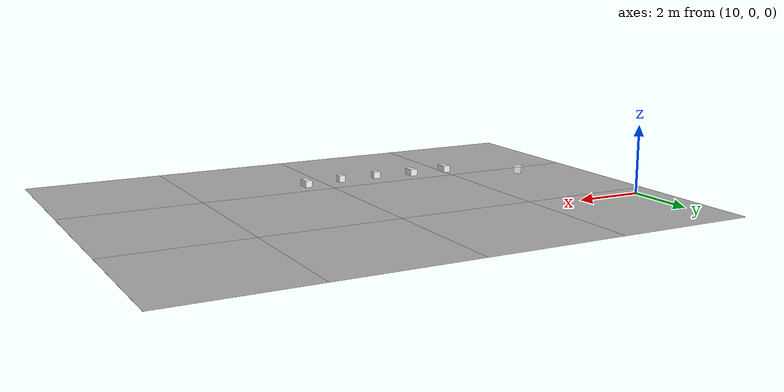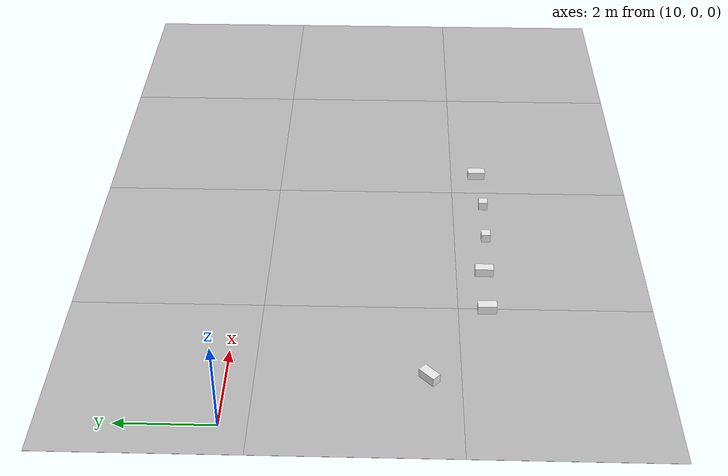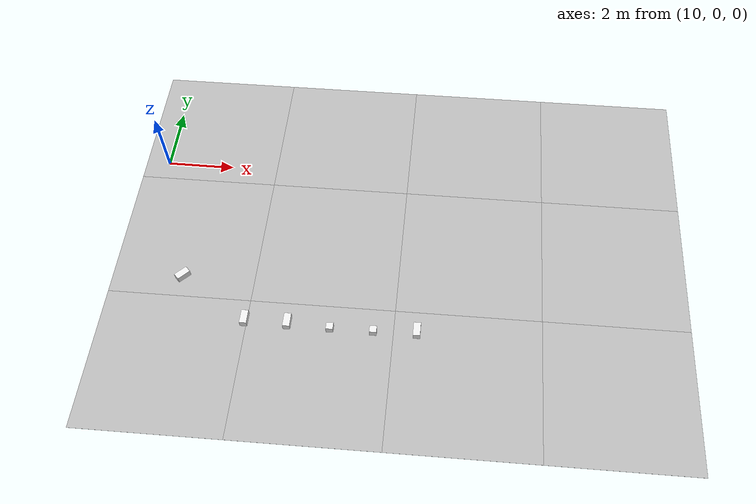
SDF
<sdf version="1.6">
 <world name="default">
  <model name="Tile/3-0">
   <static>1</static>
   <link name="link">
    <collision name="collision">
     <geometry><plane><normal>0 0 1</normal><size>4.096 4.096</size></plane></geometry>
     <surface><friction><ode><mu>100</mu><mu2>50</mu2></ode></friction></surface>
    </collision>
    <visual name="visual">
     <cast_shadows>0</cast_shadows>
     <geometry><plane><normal>0 0 1</normal><size>4.096 4.096</size></plane></geometry>
     <material>
      <script>
       <uri>file://materials/scripts</uri>
       <uri>file://materials/textures</uri>
       <name>Tile/bb6622205ec6fa9754d680b6af74b4b74165d6a4ec52a02b70ec7b28941813ba</name>
      </script>
     </material>
    </visual>
   </link>
   <pose>11.336 -6.705231160202137 0 0 -0 0</pose>
  </model>
  <model name="Tile/3-1">
   <static>1</static>
   <link name="link">
    <collision name="collision">
     <geometry><plane><normal>0 0 1</normal><size>4.096 4.096</size></plane></geometry>
     <surface><friction><ode><mu>100</mu><mu2>50</mu2></ode></friction></surface>
    </collision>
    <visual name="visual">
     <cast_shadows>0</cast_shadows>
     <geometry><plane><normal>0 0 1</normal><size>4.096 4.096</size></plane></geometry>
     <material>
      <script>
       <uri>file://materials/scripts</uri>
       <uri>file://materials/textures</uri>
       <name>Tile/f730026fd5666536d40734464e8b31680d31e4660e39eef831013a25a2517ce9</name>
      </script>
     </material>
    </visual>
   </link>
   <pose>11.336 -2.609231160202137 0 0 -0 0</pose>
  </model>
  <model name="Tile/3-2">
   <static>1</static>
   <link name="link">
    <collision name="collision">
     <geometry><plane><normal>0 0 1</normal><size>4.096 4.096</size></plane></geometry>
     <surface><friction><ode><mu>100</mu><mu2>50</mu2></ode></friction></surface>
    </collision>
    <visual name="visual">
     <cast_shadows>0</cast_shadows>
     <geometry><plane><normal>0 0 1</normal><size>4.096 4.096</size></plane></geometry>
     <material>
      <script>
       <uri>file://materials/scripts</uri>
       <uri>file://materials/textures</uri>
       <name>Tile/5eab350b8220ac9944dbdfa4ac3288c7c17e24c3bf5df0dfcf6173d64dae00a1</name>
      </script>
     </material>
    </visual>
   </link>
   <pose>11.336 1.486768839797863 0 0 -0 0</pose>
  </model>
  <model name="Tile/4-0">
   <static>1</static>
   <link name="link">
    <collision name="collision">
     <geometry><plane><normal>0 0 1</normal><size>4.096 4.096</size></plane></geometry>
     <surface><friction><ode><mu>100</mu><mu2>50</mu2></ode></friction></surface>
    </collision>
    <visual name="visual">
     <cast_shadows>0</cast_shadows>
     <geometry><plane><normal>0 0 1</normal><size>4.096 4.096</size></plane></geometry>
     <material>
      <script>
       <uri>file://materials/scripts</uri>
       <uri>file://materials/textures</uri>
       <name>Tile/edca1d296c7e31d2dfc0b247a1dcf915b1e78109557f9aef2d5b2542b9a4b68d</name>
      </script>
     </material>
    </visual>
   </link>
   <pose>15.431999999999999 -6.705231160202137 0 0 -0 0</pose>
  </model>
  <model name="Tile/4-1">
   <static>1</static>
   <link name="link">
    <collision name="collision">
     <geometry><plane><normal>0 0 1</normal><size>4.096 4.096</size></plane></geometry>
     <surface><friction><ode><mu>100</mu><mu2>50</mu2></ode></friction></surface>
    </collision>
    <visual name="visual">
     <cast_shadows>0</cast_shadows>
     <geometry><plane><normal>0 0 1</normal><size>4.096 4.096</size></plane></geometry>
     <material>
      <script>
       <uri>file://materials/scripts</uri>
       <uri>file://materials/textures</uri>
       <name>Tile/53bcbbffdd2a24df52fb2cbae84d48fe1a72c995905a34df0951e06d22a7bbb8</name>
      </script>
     </material>
    </visual>
   </link>
   <pose>15.431999999999999 -2.609231160202137 0 0 -0 0</pose>
  </model>
  <model name="Tile/4-2">
   <static>1</static>
   <link name="link">
    <collision name="collision">
     <geometry><plane><normal>0 0 1</normal><size>4.096 4.096</size></plane></geometry>
     <surface><friction><ode><mu>100</mu><mu2>50</mu2></ode></friction></surface>
    </collision>
    <visual name="visual">
     <cast_shadows>0</cast_shadows>
     <geometry><plane><normal>0 0 1</normal><size>4.096 4.096</size></plane></geometry>
     <material>
      <script>
       <uri>file://materials/scripts</uri>
       <uri>file://materials/textures</uri>
       <name>Tile/5eab350b8220ac9944dbdfa4ac3288c7c17e24c3bf5df0dfcf6173d64dae00a1</name>
      </script>
     </material>
    </visual>
   </link>
   <pose>15.431999999999999 1.486768839797863 0 0 -0 0</pose>
  </model>
  <model name="Tile/5-0">
   <static>1</static>
   <link name="link">
    <collision name="collision">
     <geometry><plane><normal>0 0 1</normal><size>4.096 4.096</size></plane></geometry>
     <surface><friction><ode><mu>100</mu><mu2>50</mu2></ode></friction></surface>
    </collision>
    <visual name="visual">
     <cast_shadows>0</cast_shadows>
     <geometry><plane><normal>0 0 1</normal><size>4.096 4.096</size></plane></geometry>
     <material>
      <script>
       <uri>file://materials/scripts</uri>
       <uri>file://materials/textures</uri>
       <name>Tile/c8229a72bc5ca8e4c2c8f83e9c625b3b44bb9c1ed4ab1373b71f34394571a84c</name>
      </script>
     </material>
    </visual>
   </link>
   <pose>19.528 -6.705231160202137 0 0 -0 0</pose>
  </model>
  <model name="Tile/5-1">
   <static>1</static>
   <link name="link">
    <collision name="collision">
     <geometry><plane><normal>0 0 1</normal><size>4.096 4.096</size></plane></geometry>
     <surface><friction><ode><mu>100</mu><mu2>50</mu2></ode></friction></surface>
    </collision>
    <visual name="visual">
     <cast_shadows>0</cast_shadows>
     <geometry><plane><normal>0 0 1</normal><size>4.096 4.096</size></plane></geometry>
     <material>
      <script>
       <uri>file://materials/scripts</uri>
       <uri>file://materials/textures</uri>
       <name>Tile/c3cf81229562460738026fa7ca245ea24e11b9d7d5af4e07face37e2f7680a30</name>
      </script>
     </material>
    </visual>
   </link>
   <pose>19.528 -2.609231160202137 0 0 -0 0</pose>
  </model>
  <model name="Tile/5-2">
   <static>1</static>
   <link name="link">
    <collision name="collision">
     <geometry><plane><normal>0 0 1</normal><size>4.096 4.096</size></plane></geometry>
     <surface><friction><ode><mu>100</mu><mu2>50</mu2></ode></friction></surface>
    </collision>
    <visual name="visual">
     <cast_shadows>0</cast_shadows>
     <geometry><plane><normal>0 0 1</normal><size>4.096 4.096</size></plane></geometry>
     <material>
      <script>
       <uri>file://materials/scripts</uri>
       <uri>file://materials/textures</uri>
       <name>Tile/5eab350b8220ac9944dbdfa4ac3288c7c17e24c3bf5df0dfcf6173d64dae00a1</name>
      </script>
     </material>
    </visual>
   </link>
   <pose>19.528 1.486768839797863 0 0 -0 0</pose>
  </model>
  <model name="Tile/6-0">
   <static>1</static>
   <link name="link">
    <collision name="collision">
     <geometry><plane><normal>0 0 1</normal><size>4.096 4.096</size></plane></geometry>
     <surface><friction><ode><mu>100</mu><mu2>50</mu2></ode></friction></surface>
    </collision>
    <visual name="visual">
     <cast_shadows>0</cast_shadows>
     <geometry><plane><normal>0 0 1</normal><size>4.096 4.096</size></plane></geometry>
     <material>
      <script>
       <uri>file://materials/scripts</uri>
       <uri>file://materials/textures</uri>
       <name>Tile/5eab350b8220ac9944dbdfa4ac3288c7c17e24c3bf5df0dfcf6173d64dae00a1</name>
      </script>
     </material>
    </visual>
   </link>
   <pose>23.624 -6.705231160202137 0 0 -0 0</pose>
  </model>
  <model name="Tile/6-1">
   <static>1</static>
   <link name="link">
    <collision name="collision">
     <geometry><plane><normal>0 0 1</normal><size>4.096 4.096</size></plane></geometry>
     <surface><friction><ode><mu>100</mu><mu2>50</mu2></ode></friction></surface>
    </collision>
    <visual name="visual">
     <cast_shadows>0</cast_shadows>
     <geometry><plane><normal>0 0 1</normal><size>4.096 4.096</size></plane></geometry>
     <material>
      <script>
       <uri>file://materials/scripts</uri>
       <uri>file://materials/textures</uri>
       <name>Tile/5eab350b8220ac9944dbdfa4ac3288c7c17e24c3bf5df0dfcf6173d64dae00a1</name>
      </script>
     </material>
    </visual>
   </link>
   <pose>23.624 -2.609231160202137 0 0 -0 0</pose>
  </model>
  <model name="Tile/6-2">
   <static>1</static>
   <link name="link">
    <collision name="collision">
     <geometry><plane><normal>0 0 1</normal><size>4.096 4.096</size></plane></geometry>
     <surface><friction><ode><mu>100</mu><mu2>50</mu2></ode></friction></surface>
    </collision>
    <visual name="visual">
     <cast_shadows>0</cast_shadows>
     <geometry><plane><normal>0 0 1</normal><size>4.096 4.096</size></plane></geometry>
     <material>
      <script>
       <uri>file://materials/scripts</uri>
       <uri>file://materials/textures</uri>
       <name>Tile/5eab350b8220ac9944dbdfa4ac3288c7c17e24c3bf5df0dfcf6173d64dae00a1</name>
      </script>
     </material>
    </visual>
   </link>
   <pose>23.624 1.486768839797863 0 0 -0 0</pose>
  </model>
  <model name="Obstacle/-52/0">
   <pose>11.313351365237942 -4.016295090390226 0.1 0 0 -0.7853981633974483</pose>
   <link name="link">
    <inertial>
     <mass>10</mass>
     <inertia>
      <ixx>0.166667</ixx>
      <ixy>0</ixy>
      <ixz>0</ixz>
      <iyy>0.166667</iyy>
      <iyz>0</iyz>
      <izz>0.166667</izz>
     </inertia>
    </inertial>
    <collision name="collision"><geometry><box><size>0.2 0.4 0.2</size></box></geometry></collision>
    <visual name="visual">
     <geometry><box><size>0.2 0.4 0.2</size></box></geometry>
     <material>
      <script><name>Gazebo/White</name><uri>file://media/materials/scripts/gazebo.material</uri></script>
     </material>
    </visual>
   </link>
  </model>
  <model name="Obstacle/-59/0">
   <pose>13.32253967444162 -5.262741699796952 0.1 0 0 -0.0</pose>
   <link name="link">
    <inertial>
     <mass>10</mass>
     <inertia>
      <ixx>0.166667</ixx>
      <ixy>0</ixy>
      <ixz>0</ixz>
      <iyy>0.166667</iyy>
      <iyz>0</iyz>
      <izz>0.166667</izz>
     </inertia>
    </inertial>
    <collision name="collision"><geometry><box><size>0.2 0.4 0.2</size></box></geometry></collision>
    <visual name="visual">
     <geometry><box><size>0.2 0.4 0.2</size></box></geometry>
     <material>
      <script><name>Gazebo/White</name><uri>file://media/materials/scripts/gazebo.material</uri></script>
     </material>
    </visual>
   </link>
  </model>
  <model name="Obstacle/-64/0">
   <pose>14.522539674441619 -5.262741699796952 0.1 0 0 -0.0</pose>
   <link name="link">
    <inertial>
     <mass>10</mass>
     <inertia>
      <ixx>0.166667</ixx>
      <ixy>0</ixy>
      <ixz>0</ixz>
      <iyy>0.166667</iyy>
      <iyz>0</iyz>
      <izz>0.166667</izz>
     </inertia>
    </inertial>
    <collision name="collision"><geometry><box><size>0.2 0.4 0.2</size></box></geometry></collision>
    <visual name="visual">
     <geometry><box><size>0.2 0.4 0.2</size></box></geometry>
     <material>
      <script><name>Gazebo/White</name><uri>file://media/materials/scripts/gazebo.material</uri></script>
     </material>
    </visual>
   </link>
  </model>
  <model name="Obstacle/-69/0">
   <pose>15.722539674441618 -5.362741699796952 0.1 0 0 -0.0</pose>
   <link name="link">
    <inertial>
     <mass>10</mass>
     <inertia>
      <ixx>0.166667</ixx>
      <ixy>0</ixy>
      <ixz>0</ixz>
      <iyy>0.166667</iyy>
      <iyz>0</iyz>
      <izz>0.166667</izz>
     </inertia>
    </inertial>
    <collision name="collision"><geometry><box><size>0.2 0.2 0.2</size></box></geometry></collision>
    <visual name="visual">
     <geometry><box><size>0.2 0.2 0.2</size></box></geometry>
     <material>
      <script><name>Gazebo/White</name><uri>file://media/materials/scripts/gazebo.material</uri></script>
     </material>
    </visual>
   </link>
  </model>
  <model name="Obstacle/-74/0">
   <pose>16.92253967444162 -5.362741699796952 0.1 0 0 -0.0</pose>
   <link name="link">
    <inertial>
     <mass>10</mass>
     <inertia>
      <ixx>0.166667</ixx>
      <ixy>0</ixy>
      <ixz>0</ixz>
      <iyy>0.166667</iyy>
      <iyz>0</iyz>
      <izz>0.166667</izz>
     </inertia>
    </inertial>
    <collision name="collision"><geometry><box><size>0.2 0.2 0.2</size></box></geometry></collision>
    <visual name="visual">
     <geometry><box><size>0.2 0.2 0.2</size></box></geometry>
     <material>
      <script><name>Gazebo/White</name><uri>file://media/materials/scripts/gazebo.material</uri></script>
     </material>
    </visual>
   </link>
  </model>
  <model name="Obstacle/-79/0">
   <pose>18.12253967444162 -5.262741699796952 0.1 0 0 -0.0</pose>
   <link name="link">
    <inertial>
     <mass>10</mass>
     <inertia>
      <ixx>0.166667</ixx>
      <ixy>0</ixy>
      <ixz>0</ixz>
      <iyy>0.166667</iyy>
      <iyz>0</iyz>
      <izz>0.166667</izz>
     </inertia>
    </inertial>
    <collision name="collision"><geometry><box><size>0.2 0.4 0.2</size></box></geometry></collision>
    <visual name="visual">
     <geometry><box><size>0.2 0.4 0.2</size></box></geometry>
     <material>
      <script><name>Gazebo/White</name><uri>file://media/materials/scripts/gazebo.material</uri></script>
     </material>
    </visual>
   </link>
  </model>
 </world>
</sdf>
